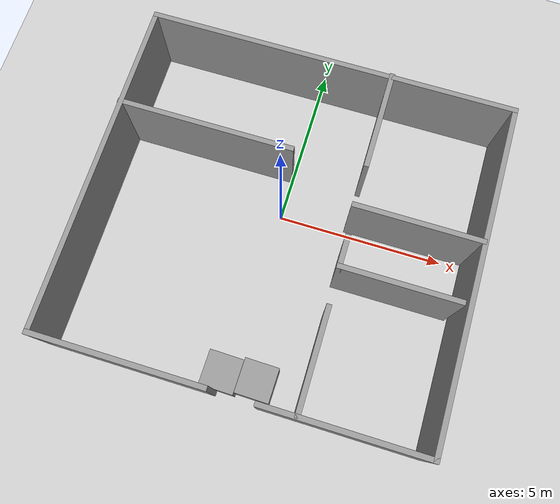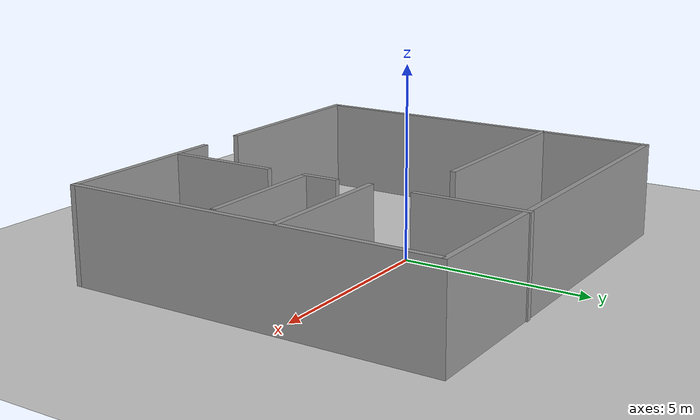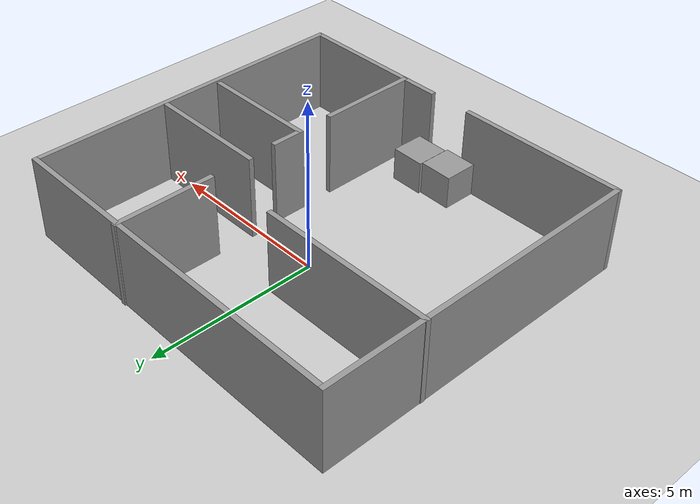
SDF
<sdf version="1.6">
 <world name="default">
  <light name="sun" type="directional">
   <pose>0 0 10 0 -0 0</pose>
   <diffuse>0.8 0.8 0.8 1</diffuse>
   <specular>0.2 0.2 0.2 1</specular>
   <attenuation>
    <range>1000</range>
    <constant>0.9</constant>
    <linear>0.01</linear>
    <quadratic>0.001</quadratic>
   </attenuation>
   <direction>-0.5 0.1 -0.9</direction>
  </light>
  <model name="ground_plane">
   <static>1</static>
   <link name="link">
    <collision name="collision">
     <geometry><plane><normal>0 0 1</normal><size>100 100</size></plane></geometry>
     <surface><friction><ode><mu>100</mu><mu2>50</mu2></ode></friction></surface>
    </collision>
    <visual name="visual">
     <cast_shadows>0</cast_shadows>
     <geometry><plane><normal>0 0 1</normal><size>100 100</size></plane></geometry>
     <material>
      <script><uri>file://media/materials/scripts/gazebo.material</uri><name>Gazebo/Grey</name></script>
     </material>
    </visual>
   </link>
  </model>
  <gravity>0 0 -9.8</gravity>
  <magnetic_field>6e-06 2.3e-05 -4.2e-05</magnetic_field>
  <atmosphere type="adiabatic"/>
  <physics name="default_physics" default="0" type="ode">
   <max_step_size>0.001</max_step_size>
   <real_time_factor>1</real_time_factor>
   <real_time_update_rate>1000</real_time_update_rate>
  </physics>
  <scene><ambient>0.4 0.4 0.4 1</ambient><background>0.7 0.7 0.7 1</background><shadows>1</shadows></scene>
  <spherical_coordinates>
   <surface_model>EARTH_WGS84</surface_model>
   <latitude_deg>0</latitude_deg>
   <longitude_deg>0</longitude_deg>
   <elevation>0</elevation>
   <heading_deg>0</heading_deg>
  </spherical_coordinates>
  <model name="model1">
   <pose>0.24581 -0.64417 0 0 -0 0</pose>
   <link name="Wall_0">
    <collision name="Wall_0_Collision">
     <geometry><box><size>5 0.15 2.5</size></box></geometry>
     <pose>0 0 1.25 0 -0 0</pose>
    </collision>
    <visual name="Wall_0_Visual">
     <pose>0 0 1.25 0 -0 0</pose>
     <geometry><box><size>5 0.15 2.5</size></box></geometry>
     <material>
      <script><uri>file://media/materials/scripts/gazebo.material</uri><name>Gazebo/Grey</name></script>
      <ambient>1 1 1 1</ambient>
     </material>
     <meta><layer>0</layer></meta>
    </visual>
    <pose>-2.99176 -4.94439 0 0 -0 3.14159</pose>
   </link>
   <link name="Wall_1">
    <collision name="Wall_1_Collision">
     <geometry><box><size>10 0.15 2.5</size></box></geometry>
     <pose>0 0 1.25 0 -0 0</pose>
    </collision>
    <visual name="Wall_1_Visual">
     <pose>0 0 1.25 0 -0 0</pose>
     <geometry><box><size>10 0.15 2.5</size></box></geometry>
     <material>
      <script><uri>file://media/materials/scripts/gazebo.material</uri><name>Gazebo/Grey</name></script>
      <ambient>1 1 1 1</ambient>
     </material>
     <meta><layer>0</layer></meta>
    </visual>
    <pose>-5.41676 -0.019392 0 0 -0 1.5708</pose>
   </link>
   <link name="Wall_10">
    <collision name="Wall_10_Collision">
     <geometry><box><size>3 0.15 2.5</size></box></geometry>
     <pose>0 0 1.25 0 -0 0</pose>
    </collision>
    <visual name="Wall_10_Visual">
     <pose>0 0 1.25 0 -0 0</pose>
     <geometry><box><size>3 0.15 2.5</size></box></geometry>
     <material>
      <script><uri>file://media/materials/scripts/gazebo.material</uri><name>Gazebo/Grey</name></script>
      <ambient>1 1 1 1</ambient>
     </material>
     <meta><layer>0</layer></meta>
    </visual>
    <pose>1.80664 3.51939 0 0 -0 -1.5708</pose>
   </link>
   <link name="Wall_12">
    <collision name="Wall_12_Collision">
     <geometry><box><size>3.75 0.15 2.5</size></box></geometry>
     <pose>0 0 1.25 0 -0 0</pose>
    </collision>
    <visual name="Wall_12_Visual">
     <pose>0 0 1.25 0 -0 0</pose>
     <geometry><box><size>3.75 0.15 2.5</size></box></geometry>
     <material>
      <script><uri>file://media/materials/scripts/gazebo.material</uri><name>Gazebo/Grey</name></script>
      <ambient>1 1 1 1</ambient>
     </material>
     <meta><layer>0</layer></meta>
    </visual>
    <pose>3.58351 0.850274 0 0 -0 0</pose>
   </link>
   <link name="Wall_14">
    <collision name="Wall_14_Collision">
     <geometry><box><size>1 0.15 2.5</size></box></geometry>
     <pose>0 0 1.25 0 -0 0</pose>
    </collision>
    <visual name="Wall_14_Visual">
     <pose>0 0 1.25 0 -0 0</pose>
     <geometry><box><size>1 0.15 2.5</size></box></geometry>
     <material>
      <script><uri>file://media/materials/scripts/gazebo.material</uri><name>Gazebo/Grey</name></script>
      <ambient>1 1 1 1</ambient>
     </material>
     <meta><layer>0</layer></meta>
    </visual>
    <pose>1.8529 -0.49995 0 0 -0 -1.5708</pose>
   </link>
   <link name="Wall_15">
    <collision name="Wall_15_Collision">
     <geometry><box><size>3.5 0.15 2.5</size></box></geometry>
     <pose>0 0 1.25 0 -0 0</pose>
    </collision>
    <visual name="Wall_15_Visual">
     <pose>0 0 1.25 0 -0 0</pose>
     <geometry><box><size>3.5 0.15 2.5</size></box></geometry>
     <material>
      <script><uri>file://media/materials/scripts/gazebo.material</uri><name>Gazebo/Grey</name></script>
      <ambient>1 1 1 1</ambient>
     </material>
     <meta><layer>0</layer></meta>
    </visual>
    <pose>3.5279 -0.92495 0 0 -0 0</pose>
   </link>
   <link name="Wall_2">
    <collision name="Wall_2_Collision">
     <geometry><box><size>11 0.15 2.5</size></box></geometry>
     <pose>0 0 1.25 0 -0 0</pose>
    </collision>
    <visual name="Wall_2_Visual">
     <pose>0 0 1.25 0 -0 0</pose>
     <geometry><box><size>11 0.15 2.5</size></box></geometry>
     <material>
      <script><uri>file://media/materials/scripts/gazebo.material</uri><name>Gazebo/Grey</name></script>
      <ambient>1 1 1 1</ambient>
     </material>
     <meta><layer>0</layer></meta>
    </visual>
    <pose>0.00824 4.90561 0 0 -0 0</pose>
   </link>
   <link name="Wall_3">
    <collision name="Wall_3_Collision">
     <geometry><box><size>10 0.15 2.5</size></box></geometry>
     <pose>0 0 1.25 0 -0 0</pose>
    </collision>
    <visual name="Wall_3_Visual">
     <pose>0 0 1.25 0 -0 0</pose>
     <geometry><box><size>10 0.15 2.5</size></box></geometry>
     <material>
      <script><uri>file://media/materials/scripts/gazebo.material</uri><name>Gazebo/Grey</name></script>
      <ambient>1 1 1 1</ambient>
     </material>
     <meta><layer>0</layer></meta>
    </visual>
    <pose>5.43324 -0.019392 0 0 -0 -1.5708</pose>
   </link>
   <link name="Wall_4">
    <collision name="Wall_4_Collision">
     <geometry><box><size>4.75 0.15 2.5</size></box></geometry>
     <pose>0 0 1.25 0 -0 0</pose>
    </collision>
    <visual name="Wall_4_Visual">
     <pose>0 0 1.25 0 -0 0</pose>
     <geometry><box><size>4.75 0.15 2.5</size></box></geometry>
     <material>
      <script><uri>file://media/materials/scripts/gazebo.material</uri><name>Gazebo/Grey</name></script>
      <ambient>1 1 1 1</ambient>
     </material>
     <meta><layer>0</layer></meta>
    </visual>
    <pose>3.13324 -4.94439 0 0 -0 3.14159</pose>
   </link>
   <link name="Wall_6">
    <collision name="Wall_6_Collision">
     <geometry><box><size>3 0.15 2.5</size></box></geometry>
     <pose>0 0 1.25 0 -0 0</pose>
    </collision>
    <visual name="Wall_6_Visual">
     <pose>0 0 1.25 0 -0 0</pose>
     <geometry><box><size>3 0.15 2.5</size></box></geometry>
     <material>
      <script><uri>file://media/materials/scripts/gazebo.material</uri><name>Gazebo/Grey</name></script>
      <ambient>1 1 1 1</ambient>
     </material>
     <meta><layer>0</layer></meta>
    </visual>
    <pose>1.87603 -3.48425 0 0 -0 1.5708</pose>
   </link>
   <link name="Wall_8">
    <collision name="Wall_8_Collision">
     <geometry><box><size>5.25 0.15 2.5</size></box></geometry>
     <pose>0 0 1.25 0 -0 0</pose>
    </collision>
    <visual name="Wall_8_Visual">
     <pose>0 0 1.25 0 -0 0</pose>
     <geometry><box><size>5.25 0.15 2.5</size></box></geometry>
     <material>
      <script><uri>file://media/materials/scripts/gazebo.material</uri><name>Gazebo/Grey</name></script>
      <ambient>1 1 1 1</ambient>
     </material>
     <meta><layer>0</layer></meta>
    </visual>
    <pose>-2.88324 1.93741 0 0 -0 0</pose>
   </link>
   <static>1</static>
  </model>
  <model name="unit_box">
   <pose>0.808654 -4.95099 0.5 0 -0 -0.017107</pose>
   <link name="link">
    <inertial>
     <mass>1</mass>
     <inertia>
      <ixx>0.166667</ixx>
      <ixy>0</ixy>
      <ixz>0</ixz>
      <iyy>0.166667</iyy>
      <iyz>0</iyz>
      <izz>0.166667</izz>
     </inertia>
    </inertial>
    <collision name="collision"><geometry><box><size>1 1 1</size></box></geometry></collision>
    <visual name="visual">
     <geometry><box><size>1 1 1</size></box></geometry>
     <material>
      <script><name>Gazebo/Grey</name><uri>file://media/materials/scripts/gazebo.material</uri></script>
     </material>
    </visual>
   </link>
  </model>
  <model name="unit_box_0">
   <pose>-0.197258 -5.01331 0.5 0 -0 -0.017359</pose>
   <link name="link">
    <inertial>
     <mass>1</mass>
     <inertia>
      <ixx>0.166667</ixx>
      <ixy>0</ixy>
      <ixz>0</ixz>
      <iyy>0.166667</iyy>
      <iyz>0</iyz>
      <izz>0.166667</izz>
     </inertia>
    </inertial>
    <collision name="collision"><geometry><box><size>1 1 1</size></box></geometry></collision>
    <visual name="visual">
     <geometry><box><size>1 1 1</size></box></geometry>
     <material>
      <script><name>Gazebo/Grey</name><uri>file://media/materials/scripts/gazebo.material</uri></script>
     </material>
    </visual>
   </link>
  </model>
 </world>
</sdf>
